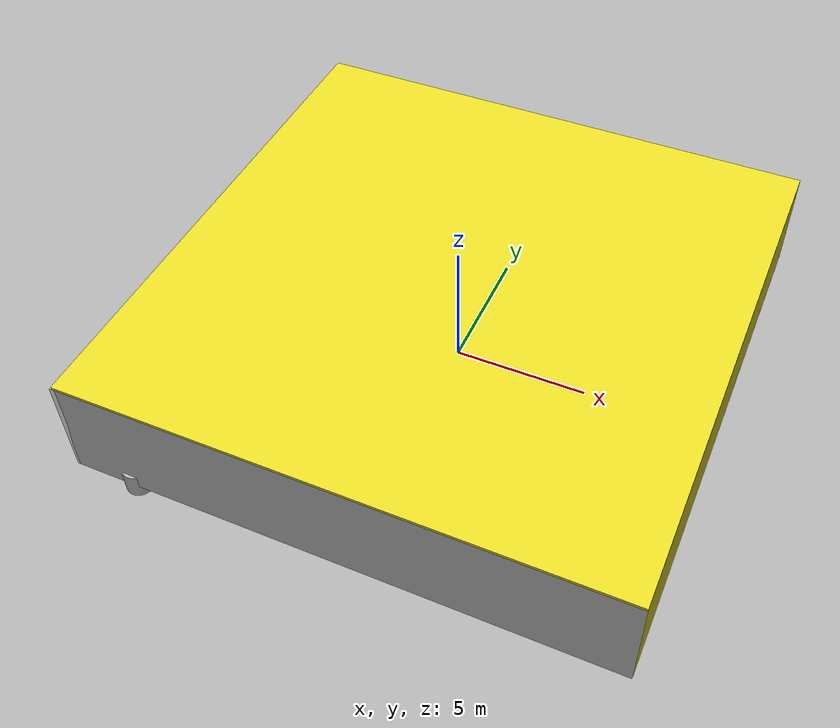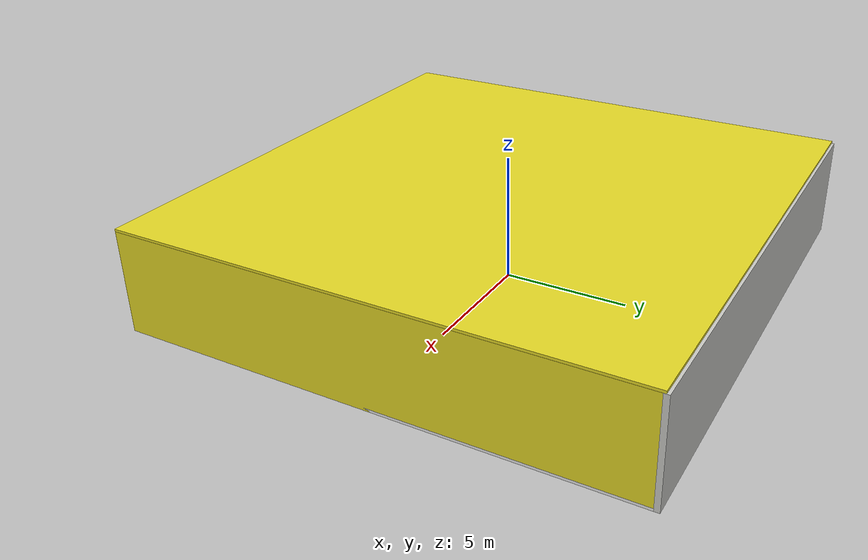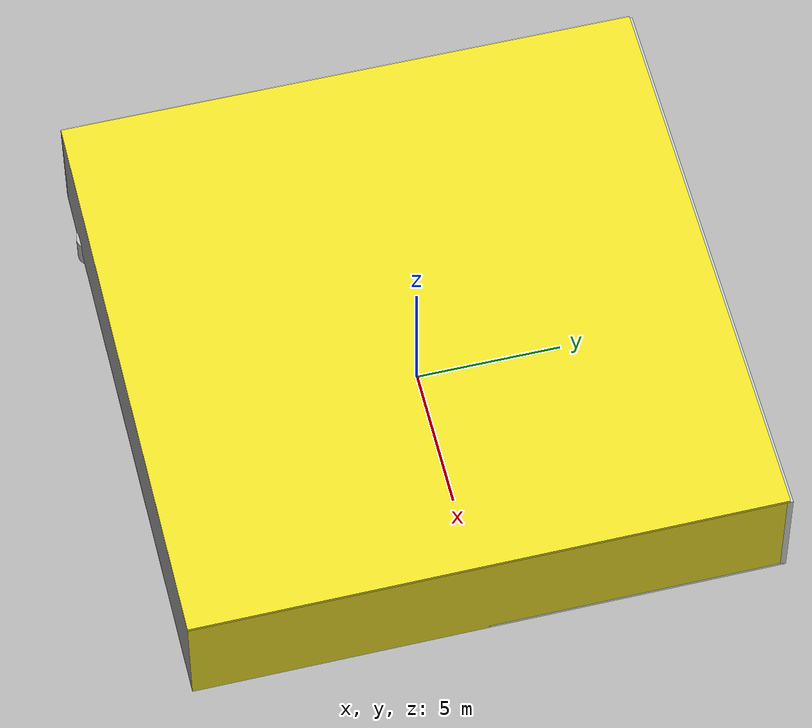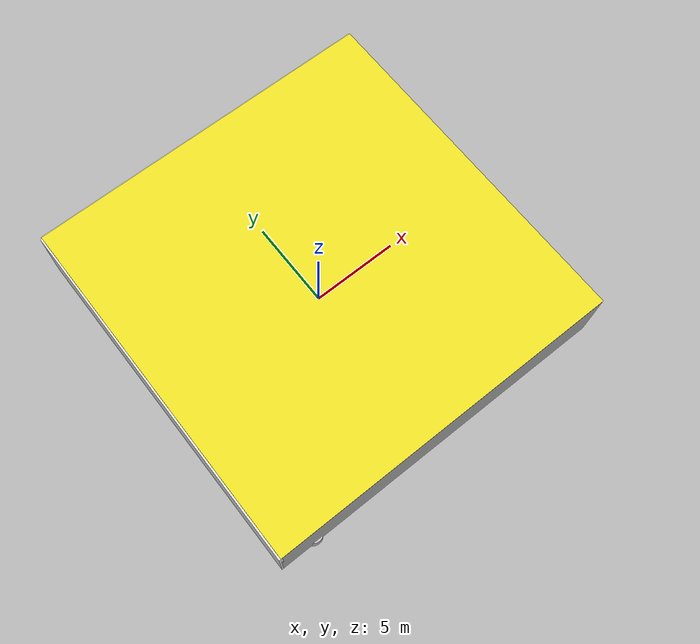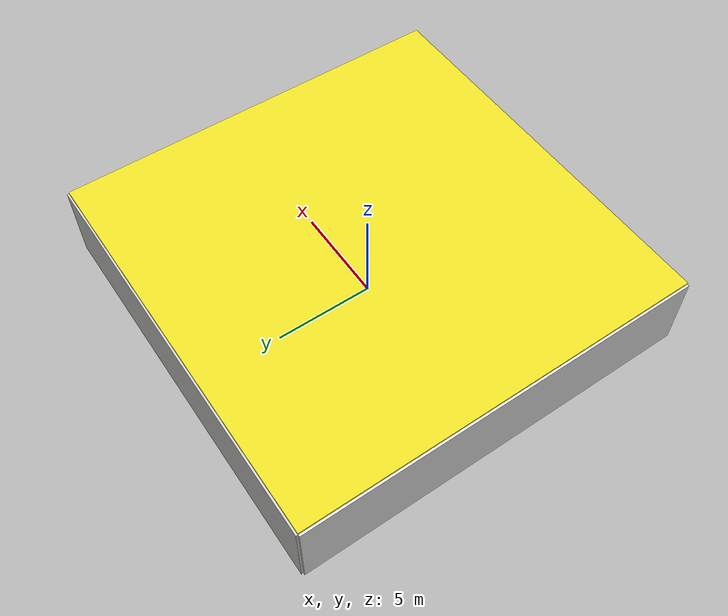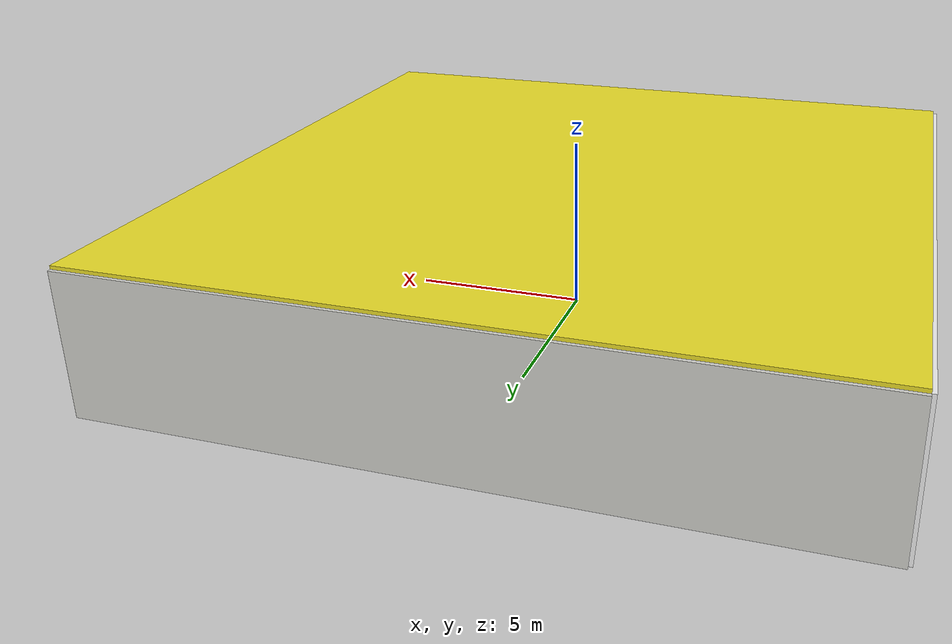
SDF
<sdf version="1.4">
 <world name="default">
  <physics type="ode">
   <max_step_size>0.001</max_step_size>
   <real_time_factor>1</real_time_factor>
   <real_time_update_rate>1000</real_time_update_rate>
   <gravity>0 0 -9.8</gravity>
  </physics>
  <scene><ambient>0.4 0.4 0.4 1</ambient><background>0.7 0.7 0.7 1</background><shadows>1</shadows></scene>
  <model name="Surrounding">
   <static>1</static>
   <link name="Ceiling">
    <collision name="Ceiling_Collision"><geometry><box><size>20 20 0.1</size></box></geometry></collision>
    <visual name="Ceiling_Visual">
     <geometry><box><size>20 20 0.1</size></box></geometry>
     <material>
      <script><uri>file://media/materials/scripts/gazebo.material</uri><name>Gazebo/YellowGlow</name></script>
     </material>
    </visual>
    <pose>0 0 4.05 0 0 0</pose>
   </link>
   <link name="Wall_South">
    <collision name="Wall_South_Collision">
     <geometry><box><size>20 0 4</size></box></geometry>
     <pose>0 0 2 0 -0 0</pose>
    </collision>
    <visual name="Wall_South_Visual">
     <pose>0 0 2 0 -0 0</pose>
     <geometry><box><size>20 0 4</size></box></geometry>
     <material>
      <script><uri>file://media/materials/scripts/gazebo.material</uri><name>Gazebo/PioneerBody</name></script>
     </material>
    </visual>
    <velocity_decay><linear>0</linear><angular>0</angular></velocity_decay>
    <pose>0 -10 0 0 -0 0</pose>
   </link>
   <link name="Wall_East">
    <collision name="Wall_21_Collision">
     <geometry><box><size>20 0 4</size></box></geometry>
     <pose>0 0 2 0 -0 0</pose>
    </collision>
    <visual name="Wall_21_Visual">
     <pose>0 0 2 0 -0 0</pose>
     <geometry><box><size>20 0 4</size></box></geometry>
     <material>
      <script><uri>file://media/materials/scripts/gazebo.material</uri><name>Gazebo/Yellow</name></script>
     </material>
    </visual>
    <velocity_decay><linear>0</linear><angular>0</angular></velocity_decay>
    <pose>10 0 0 0 -0 1.5708</pose>
   </link>
   <link name="Wall_North">
    <collision name="Wall_22_Collision">
     <geometry><box><size>20 0.2 4</size></box></geometry>
     <pose>0 0 2 0 -0 0</pose>
    </collision>
    <visual name="Wall_22_Visual">
     <pose>0 0 2 0 -0 0</pose>
     <geometry><box><size>20 0.2 4</size></box></geometry>
     <material>
      <script><uri>file://media/materials/scripts/gazebo.material</uri><name>Gazebo/CeilingTiled</name></script>
     </material>
    </visual>
    <velocity_decay><linear>0</linear><angular>0</angular></velocity_decay>
    <pose>0 10 0 0 -0 0</pose>
   </link>
   <link name="Wall_West">
    <collision name="Wall_23_Collision">
     <geometry><box><size>20 0.2 4</size></box></geometry>
     <pose>0 0 2 0 -0 0</pose>
    </collision>
    <visual name="Wall_23_Visual">
     <pose>0 0 2 0 -0 0</pose>
     <geometry><box><size>20 0.2 4</size></box></geometry>
     <material>
      <script><uri>file://media/materials/scripts/gazebo.material</uri><name>Gazebo/White</name></script>
     </material>
    </visual>
    <velocity_decay><linear>0</linear><angular>0</angular></velocity_decay>
    <pose>-10 0 0 0 0 -1.5708</pose>
   </link>
   <link name="Ground_link">
    <collision name="collision">
     <pose>0 0 .05 0 -0 0</pose>
     <geometry><box><size>20 20 0.1</size></box></geometry>
    </collision>
    <visual name="visual">
     <pose>0 0 .05 0 -0 0</pose>
     <geometry><box><size>20 20 0.1</size></box></geometry>
     <material>
      <script><uri>file://media/materials/scripts/gazebo.material</uri><name>Gazebo/WhiteGlow</name></script>
     </material>
    </visual>
   </link>
   <static>1</static>
  </model>
  <spherical_coordinates>
   <surface_model>EARTH_WGS84</surface_model>
   <latitude_deg>0</latitude_deg>
   <longitude_deg>0</longitude_deg>
   <elevation>0</elevation>
   <heading_deg>0</heading_deg>
  </spherical_coordinates>
  <light name="lightball_0" type="diffuse">
   <diffuse>0.8 0.8 0.8 1</diffuse>
   <specular>0.2 0.2 0.2 1</specular>
   <attenuation>
    <range>100</range>
    <constant>0.7</constant>
    <linear>0.01</linear>
    <quadratic>0.001</quadratic>
   </attenuation>
   <direction>-0.5 0.1 -0.9</direction>
   <pose>7.74890991876 5.0896872814 1.95600423055 0 0 0</pose>
  </light>
  <light name="lightball_1" type="diffuse">
   <diffuse>0.8 0.8 0.8 1</diffuse>
   <specular>0.2 0.2 0.2 1</specular>
   <attenuation>
    <range>100</range>
    <constant>0.7</constant>
    <linear>0.01</linear>
    <quadratic>0.001</quadratic>
   </attenuation>
   <direction>-0.5 0.1 -0.9</direction>
   <pose>-9.81210302225 -1.93732040559 2.51298138556 0 0 0</pose>
  </light>
  <light name="lightball_2" type="diffuse">
   <diffuse>0.8 0.8 0.8 1</diffuse>
   <specular>0.2 0.2 0.2 1</specular>
   <attenuation>
    <range>100</range>
    <constant>0.7</constant>
    <linear>0.01</linear>
    <quadratic>0.001</quadratic>
   </attenuation>
   <direction>-0.5 0.1 -0.9</direction>
   <pose>0.473641432151 -5.44992376035 1.06209213447 0 0 0</pose>
  </light>
  <light name="lightball_3" type="diffuse">
   <diffuse>0.8 0.8 0.8 1</diffuse>
   <specular>0.2 0.2 0.2 1</specular>
   <attenuation>
    <range>100</range>
    <constant>0.7</constant>
    <linear>0.01</linear>
    <quadratic>0.001</quadratic>
   </attenuation>
   <direction>-0.5 0.1 -0.9</direction>
   <pose>2.83476538188 -2.29685452207 2.88453361192 0 0 0</pose>
  </light>
  <light name="lightball_4" type="diffuse">
   <diffuse>0.8 0.8 0.8 1</diffuse>
   <specular>0.2 0.2 0.2 1</specular>
   <attenuation>
    <range>100</range>
    <constant>0.7</constant>
    <linear>0.01</linear>
    <quadratic>0.001</quadratic>
   </attenuation>
   <direction>-0.5 0.1 -0.9</direction>
   <pose>-5.05707115055 9.81258733595 1.02023758402 0 0 0</pose>
  </light>
  <light name="lightball_5" type="diffuse">
   <diffuse>0.8 0.8 0.8 1</diffuse>
   <specular>0.2 0.2 0.2 1</specular>
   <attenuation>
    <range>100</range>
    <constant>0.7</constant>
    <linear>0.01</linear>
    <quadratic>0.001</quadratic>
   </attenuation>
   <direction>-0.5 0.1 -0.9</direction>
   <pose>0.257180677661 -0.385247102922 1.54117979657 0 0 0</pose>
  </light>
  <light name="lightball_6" type="diffuse">
   <diffuse>0.8 0.8 0.8 1</diffuse>
   <specular>0.2 0.2 0.2 1</specular>
   <attenuation>
    <range>100</range>
    <constant>0.7</constant>
    <linear>0.01</linear>
    <quadratic>0.001</quadratic>
   </attenuation>
   <direction>-0.5 0.1 -0.9</direction>
   <pose>-9.43866838403 3.16490327171 3.6546521056 0 0 0</pose>
  </light>
  <light name="lightball_7" type="diffuse">
   <diffuse>0.8 0.8 0.8 1</diffuse>
   <specular>0.2 0.2 0.2 1</specular>
   <attenuation>
    <range>100</range>
    <constant>0.7</constant>
    <linear>0.01</linear>
    <quadratic>0.001</quadratic>
   </attenuation>
   <direction>-0.5 0.1 -0.9</direction>
   <pose>2.57968090566 8.5008202068 3.14222521035 0 0 0</pose>
  </light>
  <light name="lightball_8" type="diffuse">
   <diffuse>0.8 0.8 0.8 1</diffuse>
   <specular>0.2 0.2 0.2 1</specular>
   <attenuation>
    <range>100</range>
    <constant>0.7</constant>
    <linear>0.01</linear>
    <quadratic>0.001</quadratic>
   </attenuation>
   <direction>-0.5 0.1 -0.9</direction>
   <pose>0.686495500309 8.65904364321 2.81336963085 0 0 0</pose>
  </light>
  <light name="lightball_9" type="diffuse">
   <diffuse>0.8 0.8 0.8 1</diffuse>
   <specular>0.2 0.2 0.2 1</specular>
   <attenuation>
    <range>100</range>
    <constant>0.7</constant>
    <linear>0.01</linear>
    <quadratic>0.001</quadratic>
   </attenuation>
   <direction>-0.5 0.1 -0.9</direction>
   <pose>2.02501426446 -2.01054955482 3.59554491006 0 0 0</pose>
  </light>
  <light name="lightball_10" type="diffuse">
   <diffuse>0.8 0.8 0.8 1</diffuse>
   <specular>0.2 0.2 0.2 1</specular>
   <attenuation>
    <range>100</range>
    <constant>0.7</constant>
    <linear>0.01</linear>
    <quadratic>0.001</quadratic>
   </attenuation>
   <direction>-0.5 0.1 -0.9</direction>
   <pose>-9.60199733629 -8.8775549999 2.47959333968 0 0 0</pose>
  </light>
  <light name="lightball_11" type="diffuse">
   <diffuse>0.8 0.8 0.8 1</diffuse>
   <specular>0.2 0.2 0.2 1</specular>
   <attenuation>
    <range>100</range>
    <constant>0.7</constant>
    <linear>0.01</linear>
    <quadratic>0.001</quadratic>
   </attenuation>
   <direction>-0.5 0.1 -0.9</direction>
   <pose>-3.54353873032 -0.202070312291 2.85775761945 0 0 0</pose>
  </light>
  <include>
   <uri>model://textured_shapes</uri>
   <pose>-7.58333205093 -8.14133853074 0 0 0 2.94434219576</pose>
  </include>
  <include><uri>model://table</uri><pose>-7.8415418015 -3.82385821493 0 0 0 2.90915857197</pose></include>
  <include>
   <uri>model://textured_shapes</uri>
   <pose>-8.01795032324 4.05867984107 0 0 0 2.89669566003</pose>
  </include>
 </world>
</sdf>

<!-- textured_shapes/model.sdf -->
<sdf version="1.6">
  <model name="textured_shapes">
    <pose>0 0 0.5 0 0 0</pose>
    <link name="box">
      <pose>0 -1.5 0 0 0 0</pose>
      <collision name="collision">
        <geometry>
          <box>
            <size>1 1 1</size>
          </box>
        </geometry>
      </collision>
      <visual name="visual">
        <geometry>
          <box>
            <size>1 1 1</size>
          </box>
        </geometry>
        <material>
          <script>
            <uri>model://../model_source/models/textured_shapes/materials/scripts</uri>
            <uri>model://../model_source/models/textured_shapes/materials/textures</uri>
            <name>TexturedShape/Squares</name>
          </script>
        </material>
      </visual>
    </link>
    <link name="sphere">
      <collision name="collision">
        <geometry>
          <sphere>
            <radius>0.5</radius>
          </sphere>
        </geometry>
      </collision>
      <visual name="visual">
        <geometry>
          <sphere>
            <radius>0.5</radius>
          </sphere>
        </geometry>
        <material>
          <script>
            <uri>model://../model_source/models/textured_shapes/materials/scripts</uri>
            <uri>model://../model_source/models/textured_shapes/materials/textures</uri>
            <name>TexturedShape/Squares</name>
          </script>
        </material>
      </visual>
    </link>
    <link name="cylinder">
      <pose>0 1.5 0 0 0 0</pose>
      <collision name="collision">
        <geometry>
          <cylinder>
            <radius>0.5</radius>
            <length>1</length>
          </cylinder>
        </geometry>
      </collision>
      <visual name="visual">
        <geometry>
          <cylinder>
            <radius>0.5</radius>
            <length>1</length>
          </cylinder>
        </geometry>
        <material>
          <script>
            <uri>model://../model_source/models/textured_shapes/materials/scripts</uri>
            <uri>model://../model_source/models/textured_shapes/materials/textures</uri>
            <name>TexturedShape/Squares</name>
          </script>
        </material>
      </visual>
    </link>
  </model>
</sdf>

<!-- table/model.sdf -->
<sdf version="1.5">
  <model name="table">
    <static>true</static>
    <link name="link">
      <collision name="surface">
        <pose>0 0 1.0 0 0 0</pose>
        <geometry>
          <box>
            <size>1.5 0.8 0.03</size>
          </box>
        </geometry>
        <surface>
          <friction>
            <ode>
              <mu>0.6</mu>
              <mu2>0.6</mu2>
            </ode>
          </friction>
        </surface>
      </collision>
      <visual name="visual1">
        <pose>0 0 1.0 0 0 0</pose>
        <geometry>
          <box>
            <size>1.5 0.8 0.03</size>
          </box>
        </geometry>
        <material>
          <script>
            <uri>model://media/materials/scripts/gazebo.material</uri>
            <name>Gazebo/Wood</name>
          </script>
        </material>
      </visual>
      <collision name="front_left_leg">
        <pose>0.68 0.38 0.5 0 0 0</pose>
        <geometry>
          <cylinder>
            <radius>0.02</radius>
            <length>1.0</length>
          </cylinder>
        </geometry>
      </collision>
      <visual name="front_left_leg">
        <pose>0.68 0.38 0.5 0 0 0</pose>
        <geometry>
          <cylinder>
            <radius>0.02</radius>
            <length>1.0</length>
          </cylinder>
        </geometry>
        <material>
          <script>
            <uri>model://media/materials/scripts/gazebo.material</uri>
            <name>Gazebo/Grey</name>
          </script>
        </material>
      </visual>
      <collision name="front_right_leg">
        <pose>0.68 -0.38 0.5 0 0 0</pose>
        <geometry>
          <cylinder>
            <radius>0.02</radius>
            <length>1.0</length>
          </cylinder>
        </geometry>
      </collision>
      <visual name="front_right_leg">
        <pose>0.68 -0.38 0.5 0 0 0</pose>
        <geometry>
          <cylinder>
            <radius>0.02</radius>
            <length>1.0</length>
          </cylinder>
        </geometry>
        <material>
          <script>
            <uri>model://media/materials/scripts/gazebo.material</uri>
            <name>Gazebo/Grey</name>
          </script>
        </material>
      </visual>
      <collision name="back_right_leg">
        <pose>-0.68 -0.38 0.5 0 0 0</pose>
        <geometry>
          <cylinder>
            <radius>0.02</radius>
            <length>1.0</length>
          </cylinder>
        </geometry>
      </collision>
      <visual name="back_right_leg">
        <pose>-0.68 -0.38 0.5 0 0 0</pose>
        <geometry>
          <cylinder>
            <radius>0.02</radius>
            <length>1.0</length>
          </cylinder>
        </geometry>
        <material>
          <script>
            <uri>model://media/materials/scripts/gazebo.material</uri>
            <name>Gazebo/Grey</name>
          </script>
        </material>
      </visual>
      <collision name="back_left_leg">
        <pose>-0.68 0.38 0.5 0 0 0</pose>
        <geometry>
          <cylinder>
            <radius>0.02</radius>
            <length>1.0</length>
          </cylinder>
        </geometry>
      </collision>
      <visual name="back_left_leg">
        <pose>-0.68 0.38 0.5 0 0 0</pose>
        <geometry>
          <cylinder>
            <radius>0.02</radius>
            <length>1.0</length>
          </cylinder>
        </geometry>
        <material>
          <script>
            <uri>model://media/materials/scripts/gazebo.material</uri>
            <name>Gazebo/Grey</name>
          </script>
        </material>
      </visual>
    </link>
  </model>
</sdf>
